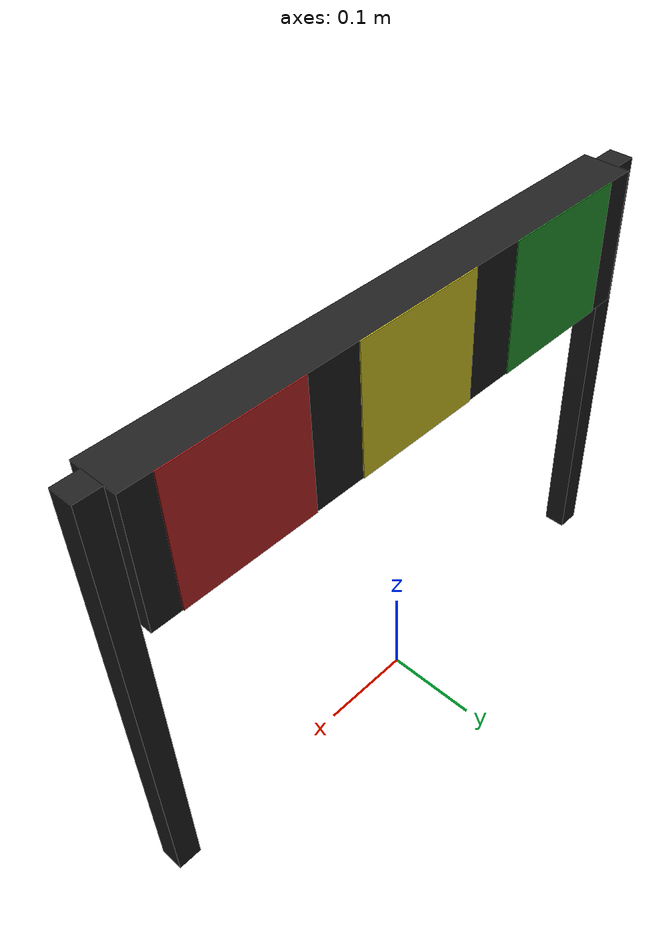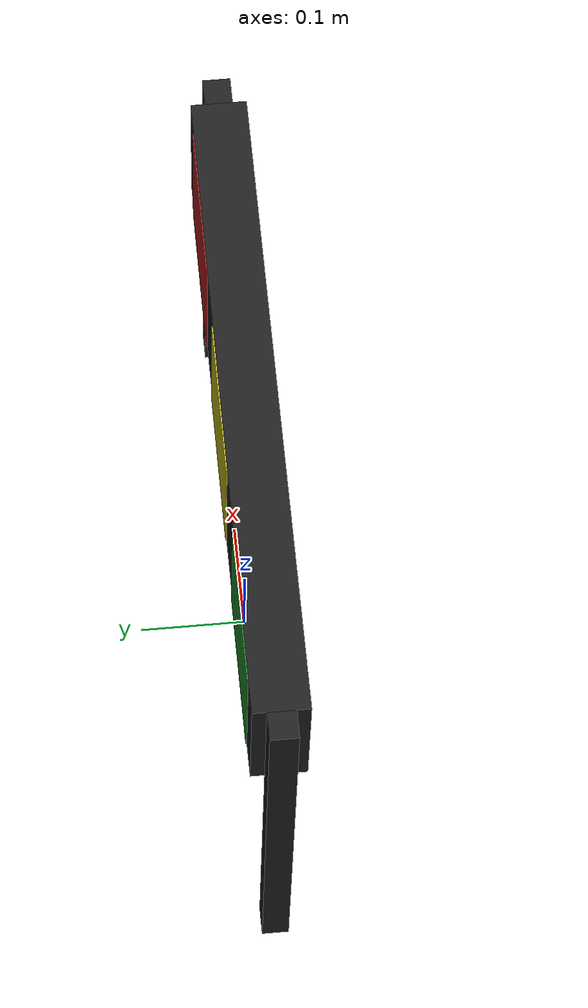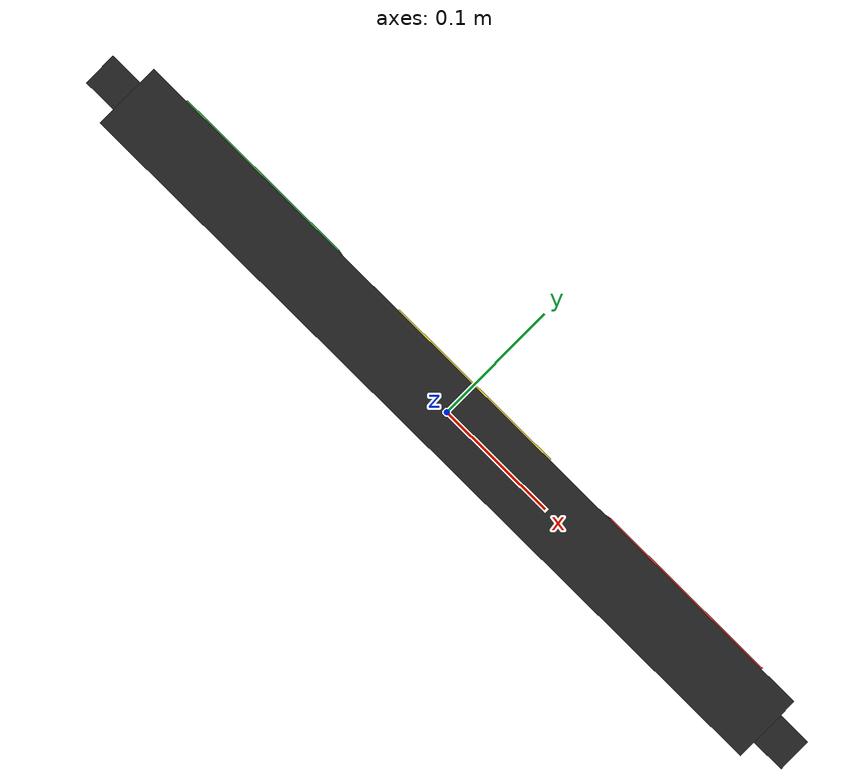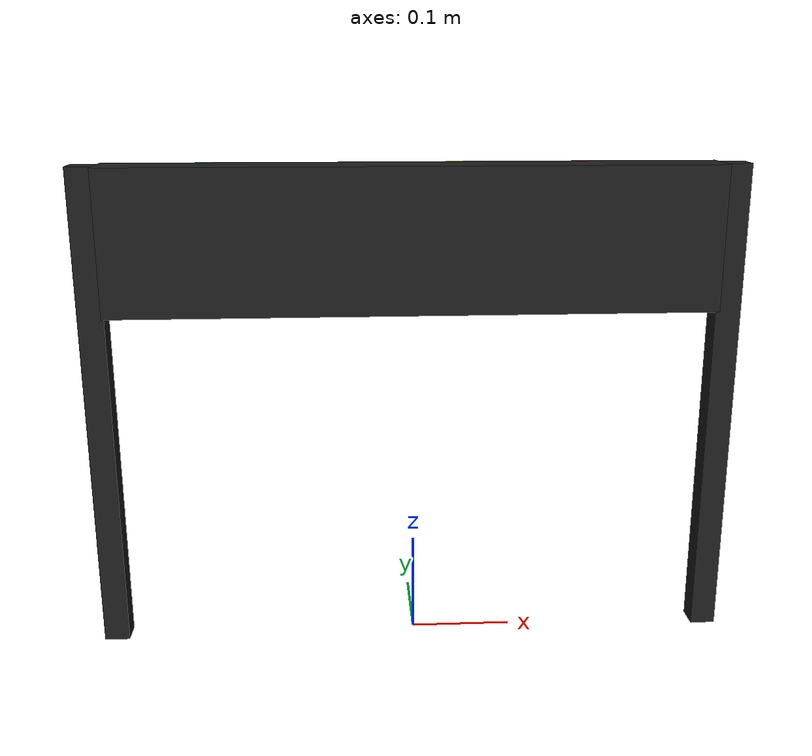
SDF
<?xml version="1.0"?>
<sdf version="1.6">
  <model name="traffic_light">
    <static>true</static>

    <!-- Traffic-light housing -->
    <link name="housing">
      <pose>0 0 0.41 0 0 0</pose>

      <collision name="housing_collision">
        <geometry>
          <box>
            <size>0.59 0.05 0.14</size>
          </box>
        </geometry>
      </collision>

      <visual name="housing_visual">
        <geometry>
          <box>
            <size>0.59 0.05 0.14</size>
          </box>
        </geometry>
        <material>
          <script>
            <uri>file://media/materials/scripts/gazebo.material</uri>
            <name>Gazebo/Black</name>
          </script>
        </material>
      </visual>

      <!-- Red lamp: initial state ON -->
      <visual name="red_lamp">
        <pose>0.195 0.0255 0 0 0 0</pose>
        <geometry>
          <box>
            <size>0.14 0.001 0.14</size>
          </box>
        </geometry>
        <material>
          <script>
            <uri>model://traffic_light/materials/scripts</uri>
            <uri>model://traffic_light/materials/textures</uri>
            <name>TrafficLight/RedOn</name>
          </script>
        </material>
      </visual>

      <!-- Yellow lamp: initial state OFF -->
      <visual name="yellow_lamp">
        <pose>0 0.0255 0 0 0 0</pose>
        <geometry>
          <box>
            <size>0.14 0.001 0.14</size>
          </box>
        </geometry>
        <material>
          <script>
            <uri>model://traffic_light/materials/scripts</uri>
            <uri>model://traffic_light/materials/textures</uri>
            <name>TrafficLight/YellowOff</name>
          </script>
        </material>
      </visual>

      <!-- Green lamp: initial state OFF -->
      <visual name="green_lamp">
        <pose>-0.195 0.0255 0 0 0 0</pose>
        <geometry>
          <box>
            <size>0.14 0.001 0.14</size>
          </box>
        </geometry>
        <material>
          <script>
            <uri>model://traffic_light/materials/scripts</uri>
            <uri>model://traffic_light/materials/textures</uri>
            <name>TrafficLight/GreenOff</name>
          </script>
        </material>
      </visual>
    </link>

    <!-- Left support leg -->
    <link name="leg_left">
      <pose>-0.3075 0 0.24 0 0 0</pose>

      <collision name="leg_left_collision">
        <geometry>
          <box>
            <size>0.025 0.025 0.48</size>
          </box>
        </geometry>
      </collision>

      <visual name="leg_left_visual">
        <geometry>
          <box>
            <size>0.025 0.025 0.48</size>
          </box>
        </geometry>
        <material>
          <script>
            <uri>file://media/materials/scripts/gazebo.material</uri>
            <name>Gazebo/Black</name>
          </script>
        </material>
      </visual>
    </link>

    <!-- Right support leg -->
    <link name="leg_right">
      <pose>0.3075 0 0.24 0 0 0</pose>

      <collision name="leg_right_collision">
        <geometry>
          <box>
            <size>0.025 0.025 0.48</size>
          </box>
        </geometry>
      </collision>

      <visual name="leg_right_visual">
        <geometry>
          <box>
            <size>0.025 0.025 0.48</size>
          </box>
        </geometry>
        <material>
          <script>
            <uri>file://media/materials/scripts/gazebo.material</uri>
            <name>Gazebo/Black</name>
          </script>
        </material>
      </visual>
    </link>

    <!-- 自动红绿灯控制插件 -->
    <plugin name="traffic_light_controller"
            filename="libtraffic_light_plugin.so">

      <red_duration>10.0</red_duration>
      <yellow_duration>5.0</yellow_duration>
      <green_duration>15.0</green_duration>

    </plugin>

  </model>
</sdf>
